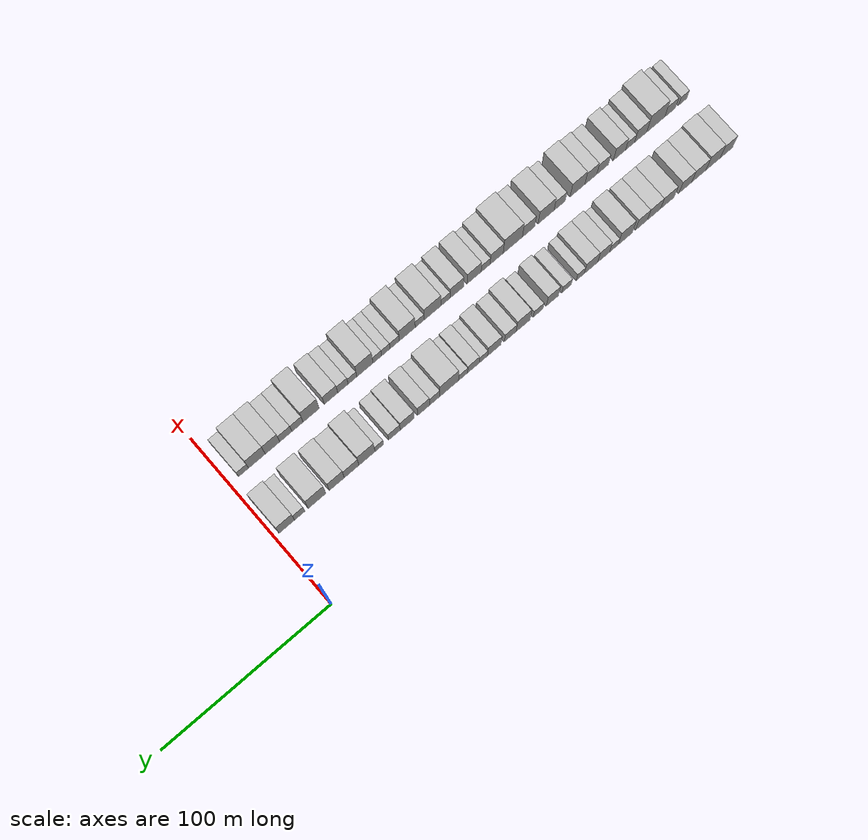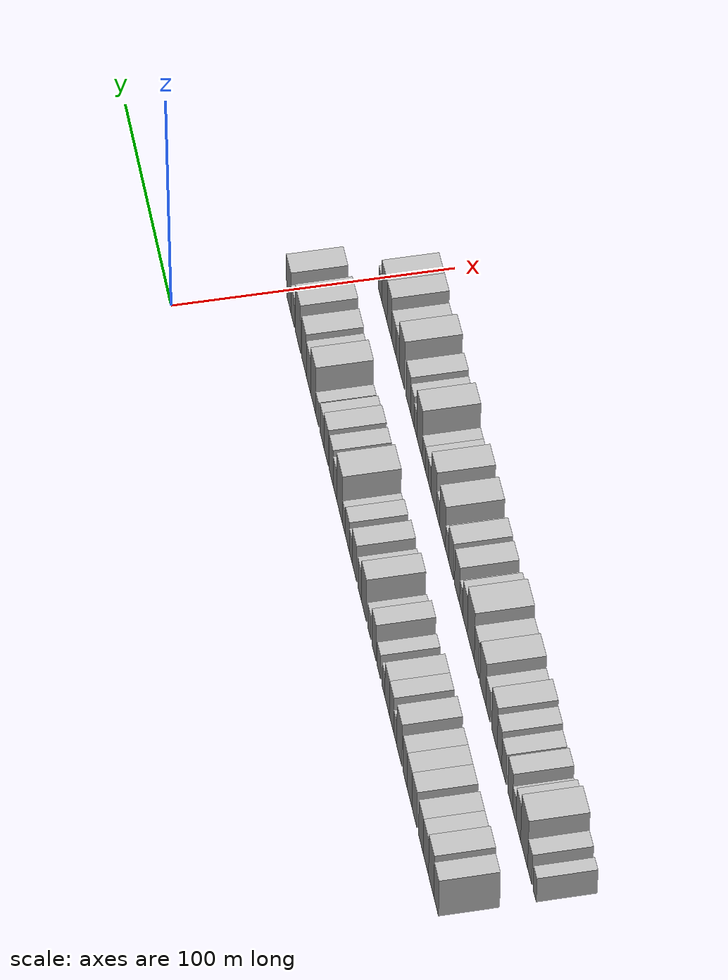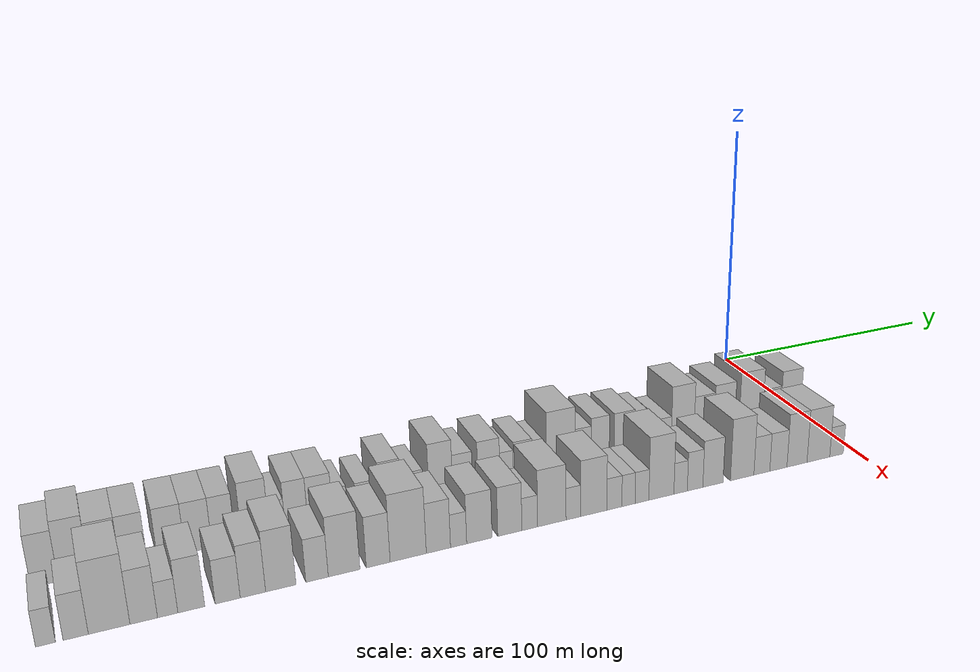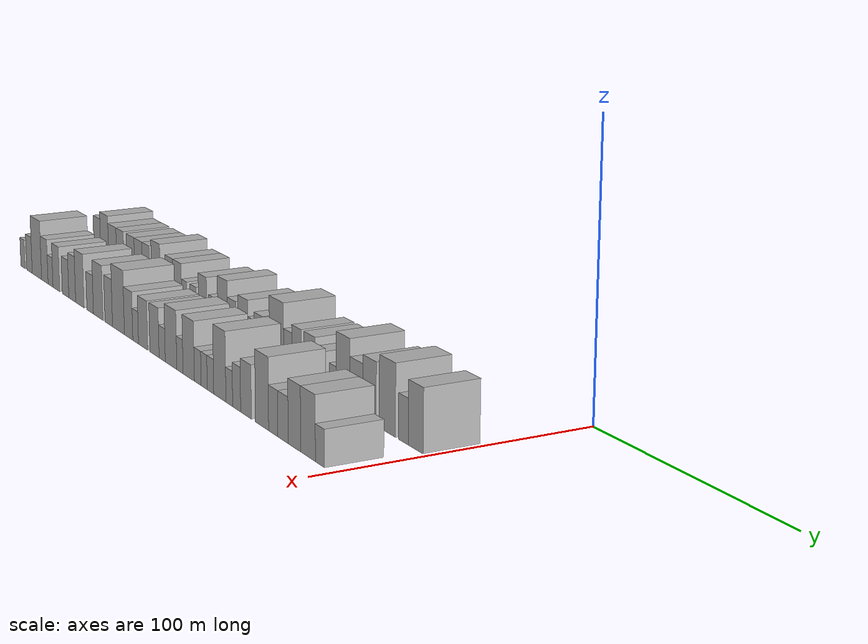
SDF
<sdf version="1.6">
 <world name="default">
  <model name="building_1">
   <static>1</static>
   <pose>50.0000 -277.0836 0 0.000000 0.000000 0.000000</pose>
   <link name="link">
    <pose>0 0 9.00 0 0 0</pose>
    <collision name="collision"><geometry><box><size>20.0000 7.8328 18.0000</size></box></geometry></collision>
    <visual name="visual">
     <cast_shadows>0</cast_shadows>
     <geometry><box><size>20.0000 7.8328 18.0000</size></box></geometry>
     <material>
      <script>
       <uri>model://HANNAS_wall/materials/scripts</uri>
       <uri>model://HANNAS_wall/materials/textures</uri>
       <name>vrc/HANNAS_wall</name>
      </script>
     </material>
    </visual>
   </link>
  </model>
  <model name="building_2">
   <static>1</static>
   <pose>50.0000 -268.6406 0 0.000000 0.000000 0.000000</pose>
   <link name="link">
    <pose>0 0 10.50 0 0 0</pose>
    <collision name="collision"><geometry><box><size>20.0000 9.0533 21.0000</size></box></geometry></collision>
    <visual name="visual">
     <cast_shadows>0</cast_shadows>
     <geometry><box><size>20.0000 9.0533 21.0000</size></box></geometry>
     <material>
      <script>
       <uri>model://HANNAS_wall/materials/scripts</uri>
       <uri>model://HANNAS_wall/materials/textures</uri>
       <name>vrc/HANNAS_wall</name>
      </script>
     </material>
    </visual>
   </link>
  </model>
  <model name="building_3">
   <static>1</static>
   <pose>50.0000 -259.6193 0 0.000000 0.000000 0.000000</pose>
   <link name="link">
    <pose>0 0 9.00 0 0 0</pose>
    <collision name="collision"><geometry><box><size>20.0000 8.9893 18.0000</size></box></geometry></collision>
    <visual name="visual">
     <cast_shadows>0</cast_shadows>
     <geometry><box><size>20.0000 8.9893 18.0000</size></box></geometry>
     <material>
      <script>
       <uri>model://HANNAS_wall/materials/scripts</uri>
       <uri>model://HANNAS_wall/materials/textures</uri>
       <name>vrc/HANNAS_wall</name>
      </script>
     </material>
    </visual>
   </link>
  </model>
  <model name="building_4">
   <static>1</static>
   <pose>50.0000 -251.0663 0 0.000000 0.000000 0.000000</pose>
   <link name="link">
    <pose>0 0 9.00 0 0 0</pose>
    <collision name="collision"><geometry><box><size>20.0000 8.1167 18.0000</size></box></geometry></collision>
    <visual name="visual">
     <cast_shadows>0</cast_shadows>
     <geometry><box><size>20.0000 8.1167 18.0000</size></box></geometry>
     <material>
      <script>
       <uri>model://HANNAS_wall/materials/scripts</uri>
       <uri>model://HANNAS_wall/materials/textures</uri>
       <name>vrc/HANNAS_wall</name>
      </script>
     </material>
    </visual>
   </link>
  </model>
  <model name="building_5">
   <static>1</static>
   <pose>50.0000 -239.7565 0 0.000000 0.000000 0.000000</pose>
   <link name="link">
    <pose>0 0 9.00 0 0 0</pose>
    <collision name="collision"><geometry><box><size>20.0000 8.5028 18.0000</size></box></geometry></collision>
    <visual name="visual">
     <cast_shadows>0</cast_shadows>
     <geometry><box><size>20.0000 8.5028 18.0000</size></box></geometry>
     <material>
      <script>
       <uri>model://HANNAS_wall/materials/scripts</uri>
       <uri>model://HANNAS_wall/materials/textures</uri>
       <name>vrc/HANNAS_wall</name>
      </script>
     </material>
    </visual>
   </link>
  </model>
  <model name="building_6">
   <static>1</static>
   <pose>50.0000 -231.3192 0 0.000000 0.000000 0.000000</pose>
   <link name="link">
    <pose>0 0 9.00 0 0 0</pose>
    <collision name="collision"><geometry><box><size>20.0000 8.3718 18.0000</size></box></geometry></collision>
    <visual name="visual">
     <cast_shadows>0</cast_shadows>
     <geometry><box><size>20.0000 8.3718 18.0000</size></box></geometry>
     <material>
      <script>
       <uri>model://HANNAS_wall/materials/scripts</uri>
       <uri>model://HANNAS_wall/materials/textures</uri>
       <name>vrc/HANNAS_wall</name>
      </script>
     </material>
    </visual>
   </link>
  </model>
  <model name="building_7">
   <static>1</static>
   <pose>50.0000 -223.4350 0 0.000000 0.000000 0.000000</pose>
   <link name="link">
    <pose>0 0 9.00 0 0 0</pose>
    <collision name="collision"><geometry><box><size>20.0000 7.3966 18.0000</size></box></geometry></collision>
    <visual name="visual">
     <cast_shadows>0</cast_shadows>
     <geometry><box><size>20.0000 7.3966 18.0000</size></box></geometry>
     <material>
      <script>
       <uri>model://HANNAS_wall/materials/scripts</uri>
       <uri>model://HANNAS_wall/materials/textures</uri>
       <name>vrc/HANNAS_wall</name>
      </script>
     </material>
    </visual>
   </link>
  </model>
  <model name="building_8">
   <static>1</static>
   <pose>50.0000 -213.2876 0 0.000000 0.000000 0.000000</pose>
   <link name="link">
    <pose>0 0 10.50 0 0 0</pose>
    <collision name="collision"><geometry><box><size>20.0000 8.8982 21.0000</size></box></geometry></collision>
    <visual name="visual">
     <cast_shadows>0</cast_shadows>
     <geometry><box><size>20.0000 8.8982 21.0000</size></box></geometry>
     <material>
      <script>
       <uri>model://HANNAS_wall/materials/scripts</uri>
       <uri>model://HANNAS_wall/materials/textures</uri>
       <name>vrc/HANNAS_wall</name>
      </script>
     </material>
    </visual>
   </link>
  </model>
  <model name="building_9">
   <static>1</static>
   <pose>50.0000 -206.2193 0 0.000000 0.000000 0.000000</pose>
   <link name="link">
    <pose>0 0 6.00 0 0 0</pose>
    <collision name="collision"><geometry><box><size>20.0000 5.2385 12.0000</size></box></geometry></collision>
    <visual name="visual">
     <cast_shadows>0</cast_shadows>
     <geometry><box><size>20.0000 5.2385 12.0000</size></box></geometry>
     <material>
      <script>
       <uri>model://HANNAS_wall/materials/scripts</uri>
       <uri>model://HANNAS_wall/materials/textures</uri>
       <name>vrc/HANNAS_wall</name>
      </script>
     </material>
    </visual>
   </link>
  </model>
  <model name="building_10">
   <static>1</static>
   <pose>50.0000 -199.8635 0 0.000000 0.000000 0.000000</pose>
   <link name="link">
    <pose>0 0 9.00 0 0 0</pose>
    <collision name="collision"><geometry><box><size>20.0000 7.4730 18.0000</size></box></geometry></collision>
    <visual name="visual">
     <cast_shadows>0</cast_shadows>
     <geometry><box><size>20.0000 7.4730 18.0000</size></box></geometry>
     <material>
      <script>
       <uri>model://HANNAS_wall/materials/scripts</uri>
       <uri>model://HANNAS_wall/materials/textures</uri>
       <name>vrc/HANNAS_wall</name>
      </script>
     </material>
    </visual>
   </link>
  </model>
  <model name="building_11">
   <static>1</static>
   <pose>50.0000 -191.9743 0 0.000000 0.000000 0.000000</pose>
   <link name="link">
    <pose>0 0 9.00 0 0 0</pose>
    <collision name="collision"><geometry><box><size>20.0000 8.3054 18.0000</size></box></geometry></collision>
    <visual name="visual">
     <cast_shadows>0</cast_shadows>
     <geometry><box><size>20.0000 8.3054 18.0000</size></box></geometry>
     <material>
      <script>
       <uri>model://HANNAS_wall/materials/scripts</uri>
       <uri>model://HANNAS_wall/materials/textures</uri>
       <name>vrc/HANNAS_wall</name>
      </script>
     </material>
    </visual>
   </link>
  </model>
  <model name="building_12">
   <static>1</static>
   <pose>50.0000 -185.3072 0 0.000000 0.000000 0.000000</pose>
   <link name="link">
    <pose>0 0 6.00 0 0 0</pose>
    <collision name="collision"><geometry><box><size>20.0000 5.0287 12.0000</size></box></geometry></collision>
    <visual name="visual">
     <cast_shadows>0</cast_shadows>
     <geometry><box><size>20.0000 5.0287 12.0000</size></box></geometry>
     <material>
      <script>
       <uri>model://HANNAS_wall/materials/scripts</uri>
       <uri>model://HANNAS_wall/materials/textures</uri>
       <name>vrc/HANNAS_wall</name>
      </script>
     </material>
    </visual>
   </link>
  </model>
  <model name="building_13">
   <static>1</static>
   <pose>50.0000 -176.8049 0 0.000000 0.000000 0.000000</pose>
   <link name="link">
    <pose>0 0 6.00 0 0 0</pose>
    <collision name="collision"><geometry><box><size>20.0000 5.9760 12.0000</size></box></geometry></collision>
    <visual name="visual">
     <cast_shadows>0</cast_shadows>
     <geometry><box><size>20.0000 5.9760 12.0000</size></box></geometry>
     <material>
      <script>
       <uri>model://HANNAS_wall/materials/scripts</uri>
       <uri>model://HANNAS_wall/materials/textures</uri>
       <name>vrc/HANNAS_wall</name>
      </script>
     </material>
    </visual>
   </link>
  </model>
  <model name="building_14">
   <static>1</static>
   <pose>50.0000 -168.0518 0 0.000000 0.000000 0.000000</pose>
   <link name="link">
    <pose>0 0 9.00 0 0 0</pose>
    <collision name="collision"><geometry><box><size>20.0000 7.5302 18.0000</size></box></geometry></collision>
    <visual name="visual">
     <cast_shadows>0</cast_shadows>
     <geometry><box><size>20.0000 7.5302 18.0000</size></box></geometry>
     <material>
      <script>
       <uri>model://HANNAS_wall/materials/scripts</uri>
       <uri>model://HANNAS_wall/materials/textures</uri>
       <name>vrc/HANNAS_wall</name>
      </script>
     </material>
    </visual>
   </link>
  </model>
  <model name="building_15">
   <static>1</static>
   <pose>50.0000 -159.2871 0 0.000000 0.000000 0.000000</pose>
   <link name="link">
    <pose>0 0 6.00 0 0 0</pose>
    <collision name="collision"><geometry><box><size>20.0000 5.9992 12.0000</size></box></geometry></collision>
    <visual name="visual">
     <cast_shadows>0</cast_shadows>
     <geometry><box><size>20.0000 5.9992 12.0000</size></box></geometry>
     <material>
      <script>
       <uri>model://HANNAS_wall/materials/scripts</uri>
       <uri>model://HANNAS_wall/materials/textures</uri>
       <name>vrc/HANNAS_wall</name>
      </script>
     </material>
    </visual>
   </link>
  </model>
  <model name="building_16">
   <static>1</static>
   <pose>50.0000 -150.0109 0 0.000000 0.000000 0.000000</pose>
   <link name="link">
    <pose>0 0 10.50 0 0 0</pose>
    <collision name="collision"><geometry><box><size>20.0000 8.5532 21.0000</size></box></geometry></collision>
    <visual name="visual">
     <cast_shadows>0</cast_shadows>
     <geometry><box><size>20.0000 8.5532 21.0000</size></box></geometry>
     <material>
      <script>
       <uri>model://HANNAS_wall/materials/scripts</uri>
       <uri>model://HANNAS_wall/materials/textures</uri>
       <name>vrc/HANNAS_wall</name>
      </script>
     </material>
    </visual>
   </link>
  </model>
  <model name="building_17">
   <static>1</static>
   <pose>50.0000 -142.0953 0 0.000000 0.000000 0.000000</pose>
   <link name="link">
    <pose>0 0 7.50 0 0 0</pose>
    <collision name="collision"><geometry><box><size>20.0000 7.2780 15.0000</size></box></geometry></collision>
    <visual name="visual">
     <cast_shadows>0</cast_shadows>
     <geometry><box><size>20.0000 7.2780 15.0000</size></box></geometry>
     <material>
      <script>
       <uri>model://HANNAS_wall/materials/scripts</uri>
       <uri>model://HANNAS_wall/materials/textures</uri>
       <name>vrc/HANNAS_wall</name>
      </script>
     </material>
    </visual>
   </link>
  </model>
  <model name="building_18">
   <static>1</static>
   <pose>50.0000 -132.3448 0 0.000000 0.000000 0.000000</pose>
   <link name="link">
    <pose>0 0 9.00 0 0 0</pose>
    <collision name="collision"><geometry><box><size>20.0000 8.2228 18.0000</size></box></geometry></collision>
    <visual name="visual">
     <cast_shadows>0</cast_shadows>
     <geometry><box><size>20.0000 8.2228 18.0000</size></box></geometry>
     <material>
      <script>
       <uri>model://HANNAS_wall/materials/scripts</uri>
       <uri>model://HANNAS_wall/materials/textures</uri>
       <name>vrc/HANNAS_wall</name>
      </script>
     </material>
    </visual>
   </link>
  </model>
  <model name="building_19">
   <static>1</static>
   <pose>50.0000 -125.6786 0 0.000000 0.000000 0.000000</pose>
   <link name="link">
    <pose>0 0 6.00 0 0 0</pose>
    <collision name="collision"><geometry><box><size>20.0000 5.1096 12.0000</size></box></geometry></collision>
    <visual name="visual">
     <cast_shadows>0</cast_shadows>
     <geometry><box><size>20.0000 5.1096 12.0000</size></box></geometry>
     <material>
      <script>
       <uri>model://HANNAS_wall/materials/scripts</uri>
       <uri>model://HANNAS_wall/materials/textures</uri>
       <name>vrc/HANNAS_wall</name>
      </script>
     </material>
    </visual>
   </link>
  </model>
  <model name="building_20">
   <static>1</static>
   <pose>50.0000 -119.5632 0 0.000000 0.000000 0.000000</pose>
   <link name="link">
    <pose>0 0 7.50 0 0 0</pose>
    <collision name="collision"><geometry><box><size>20.0000 7.1214 15.0000</size></box></geometry></collision>
    <visual name="visual">
     <cast_shadows>0</cast_shadows>
     <geometry><box><size>20.0000 7.1214 15.0000</size></box></geometry>
     <material>
      <script>
       <uri>model://HANNAS_wall/materials/scripts</uri>
       <uri>model://HANNAS_wall/materials/textures</uri>
       <name>vrc/HANNAS_wall</name>
      </script>
     </material>
    </visual>
   </link>
  </model>
  <model name="building_21">
   <static>1</static>
   <pose>50.0000 -113.2214 0 0.000000 0.000000 0.000000</pose>
   <link name="link">
    <pose>0 0 6.00 0 0 0</pose>
    <collision name="collision"><geometry><box><size>20.0000 5.5622 12.0000</size></box></geometry></collision>
    <visual name="visual">
     <cast_shadows>0</cast_shadows>
     <geometry><box><size>20.0000 5.5622 12.0000</size></box></geometry>
     <material>
      <script>
       <uri>model://HANNAS_wall/materials/scripts</uri>
       <uri>model://HANNAS_wall/materials/textures</uri>
       <name>vrc/HANNAS_wall</name>
      </script>
     </material>
    </visual>
   </link>
  </model>
  <model name="building_22">
   <static>1</static>
   <pose>50.0000 -104.7988 0 0.000000 0.000000 0.000000</pose>
   <link name="link">
    <pose>0 0 12.00 0 0 0</pose>
    <collision name="collision"><geometry><box><size>20.0000 11.2829 24.0000</size></box></geometry></collision>
    <visual name="visual">
     <cast_shadows>0</cast_shadows>
     <geometry><box><size>20.0000 11.2829 24.0000</size></box></geometry>
     <material>
      <script>
       <uri>model://HANNAS_wall/materials/scripts</uri>
       <uri>model://HANNAS_wall/materials/textures</uri>
       <name>vrc/HANNAS_wall</name>
      </script>
     </material>
    </visual>
   </link>
  </model>
  <model name="building_23">
   <static>1</static>
   <pose>50.0000 -95.9924 0 0.000000 0.000000 0.000000</pose>
   <link name="link">
    <pose>0 0 7.50 0 0 0</pose>
    <collision name="collision"><geometry><box><size>20.0000 6.3301 15.0000</size></box></geometry></collision>
    <visual name="visual">
     <cast_shadows>0</cast_shadows>
     <geometry><box><size>20.0000 6.3301 15.0000</size></box></geometry>
     <material>
      <script>
       <uri>model://HANNAS_wall/materials/scripts</uri>
       <uri>model://HANNAS_wall/materials/textures</uri>
       <name>vrc/HANNAS_wall</name>
      </script>
     </material>
    </visual>
   </link>
  </model>
  <model name="building_24">
   <static>1</static>
   <pose>50.0000 -89.2120 0 0.000000 0.000000 0.000000</pose>
   <link name="link">
    <pose>0 0 9.00 0 0 0</pose>
    <collision name="collision"><geometry><box><size>20.0000 7.2307 18.0000</size></box></geometry></collision>
    <visual name="visual">
     <cast_shadows>0</cast_shadows>
     <geometry><box><size>20.0000 7.2307 18.0000</size></box></geometry>
     <material>
      <script>
       <uri>model://HANNAS_wall/materials/scripts</uri>
       <uri>model://HANNAS_wall/materials/textures</uri>
       <name>vrc/HANNAS_wall</name>
      </script>
     </material>
    </visual>
   </link>
  </model>
  <model name="building_25">
   <static>1</static>
   <pose>50.0000 -79.4001 0 0.000000 0.000000 0.000000</pose>
   <link name="link">
    <pose>0 0 9.00 0 0 0</pose>
    <collision name="collision"><geometry><box><size>20.0000 8.3930 18.0000</size></box></geometry></collision>
    <visual name="visual">
     <cast_shadows>0</cast_shadows>
     <geometry><box><size>20.0000 8.3930 18.0000</size></box></geometry>
     <material>
      <script>
       <uri>model://HANNAS_wall/materials/scripts</uri>
       <uri>model://HANNAS_wall/materials/textures</uri>
       <name>vrc/HANNAS_wall</name>
      </script>
     </material>
    </visual>
   </link>
  </model>
  <model name="building_26">
   <static>1</static>
   <pose>50.0000 -71.6414 0 0.000000 0.000000 0.000000</pose>
   <link name="link">
    <pose>0 0 7.50 0 0 0</pose>
    <collision name="collision"><geometry><box><size>20.0000 7.1246 15.0000</size></box></geometry></collision>
    <visual name="visual">
     <cast_shadows>0</cast_shadows>
     <geometry><box><size>20.0000 7.1246 15.0000</size></box></geometry>
     <material>
      <script>
       <uri>model://HANNAS_wall/materials/scripts</uri>
       <uri>model://HANNAS_wall/materials/textures</uri>
       <name>vrc/HANNAS_wall</name>
      </script>
     </material>
    </visual>
   </link>
  </model>
  <model name="building_27">
   <static>1</static>
   <pose>50.0000 -62.5019 0 0.000000 0.000000 0.000000</pose>
   <link name="link">
    <pose>0 0 6.00 0 0 0</pose>
    <collision name="collision"><geometry><box><size>20.0000 5.1543 12.0000</size></box></geometry></collision>
    <visual name="visual">
     <cast_shadows>0</cast_shadows>
     <geometry><box><size>20.0000 5.1543 12.0000</size></box></geometry>
     <material>
      <script>
       <uri>model://HANNAS_wall/materials/scripts</uri>
       <uri>model://HANNAS_wall/materials/textures</uri>
       <name>vrc/HANNAS_wall</name>
      </script>
     </material>
    </visual>
   </link>
  </model>
  <model name="building_28">
   <static>1</static>
   <pose>50.0000 -55.0729 0 0.000000 0.000000 0.000000</pose>
   <link name="link">
    <pose>0 0 12.00 0 0 0</pose>
    <collision name="collision"><geometry><box><size>20.0000 9.7038 24.0000</size></box></geometry></collision>
    <visual name="visual">
     <cast_shadows>0</cast_shadows>
     <geometry><box><size>20.0000 9.7038 24.0000</size></box></geometry>
     <material>
      <script>
       <uri>model://HANNAS_wall/materials/scripts</uri>
       <uri>model://HANNAS_wall/materials/textures</uri>
       <name>vrc/HANNAS_wall</name>
      </script>
     </material>
    </visual>
   </link>
  </model>
  <model name="building_29">
   <static>1</static>
   <pose>50.0000 -45.8381 0 0.000000 0.000000 0.000000</pose>
   <link name="link">
    <pose>0 0 9.00 0 0 0</pose>
    <collision name="collision"><geometry><box><size>20.0000 8.7659 18.0000</size></box></geometry></collision>
    <visual name="visual">
     <cast_shadows>0</cast_shadows>
     <geometry><box><size>20.0000 8.7659 18.0000</size></box></geometry>
     <material>
      <script>
       <uri>model://HANNAS_wall/materials/scripts</uri>
       <uri>model://HANNAS_wall/materials/textures</uri>
       <name>vrc/HANNAS_wall</name>
      </script>
     </material>
    </visual>
   </link>
  </model>
  <model name="building_30">
   <static>1</static>
   <pose>50.0000 -36.9854 0 0.000000 0.000000 0.000000</pose>
   <link name="link">
    <pose>0 0 10.50 0 0 0</pose>
    <collision name="collision"><geometry><box><size>20.0000 8.9395 21.0000</size></box></geometry></collision>
    <visual name="visual">
     <cast_shadows>0</cast_shadows>
     <geometry><box><size>20.0000 8.9395 21.0000</size></box></geometry>
     <material>
      <script>
       <uri>model://HANNAS_wall/materials/scripts</uri>
       <uri>model://HANNAS_wall/materials/textures</uri>
       <name>vrc/HANNAS_wall</name>
      </script>
     </material>
    </visual>
   </link>
  </model>
  <model name="building_31">
   <static>1</static>
   <pose>50.0000 -25.2559 0 0.000000 0.000000 0.000000</pose>
   <link name="link">
    <pose>0 0 12.00 0 0 0</pose>
    <collision name="collision"><geometry><box><size>20.0000 10.5196 24.0000</size></box></geometry></collision>
    <visual name="visual">
     <cast_shadows>0</cast_shadows>
     <geometry><box><size>20.0000 10.5196 24.0000</size></box></geometry>
     <material>
      <script>
       <uri>model://HANNAS_wall/materials/scripts</uri>
       <uri>model://HANNAS_wall/materials/textures</uri>
       <name>vrc/HANNAS_wall</name>
      </script>
     </material>
    </visual>
   </link>
  </model>
  <model name="building_32">
   <static>1</static>
   <pose>50.0000 -14.9282 0 0.000000 0.000000 0.000000</pose>
   <link name="link">
    <pose>0 0 7.50 0 0 0</pose>
    <collision name="collision"><geometry><box><size>20.0000 6.1357 15.0000</size></box></geometry></collision>
    <visual name="visual">
     <cast_shadows>0</cast_shadows>
     <geometry><box><size>20.0000 6.1357 15.0000</size></box></geometry>
     <material>
      <script>
       <uri>model://HANNAS_wall/materials/scripts</uri>
       <uri>model://HANNAS_wall/materials/textures</uri>
       <name>vrc/HANNAS_wall</name>
      </script>
     </material>
    </visual>
   </link>
  </model>
  <model name="building_33">
   <static>1</static>
   <pose>50.0000 -7.2381 0 0.000000 0.000000 0.000000</pose>
   <link name="link">
    <pose>0 0 10.50 0 0 0</pose>
    <collision name="collision"><geometry><box><size>20.0000 9.2446 21.0000</size></box></geometry></collision>
    <visual name="visual">
     <cast_shadows>0</cast_shadows>
     <geometry><box><size>20.0000 9.2446 21.0000</size></box></geometry>
     <material>
      <script>
       <uri>model://HANNAS_wall/materials/scripts</uri>
       <uri>model://HANNAS_wall/materials/textures</uri>
       <name>vrc/HANNAS_wall</name>
      </script>
     </material>
    </visual>
   </link>
  </model>
  <model name="building_67">
   <static>1</static>
   <pose>82.0000 -278.3570 0 0.000000 0.000000 0.000000</pose>
   <link name="link">
    <pose>0 0 6.00 0 0 0</pose>
    <collision name="collision"><geometry><box><size>20.0000 5.2861 12.0000</size></box></geometry></collision>
    <visual name="visual">
     <cast_shadows>0</cast_shadows>
     <geometry><box><size>20.0000 5.2861 12.0000</size></box></geometry>
     <material>
      <script>
       <uri>model://HANNAS_wall/materials/scripts</uri>
       <uri>model://HANNAS_wall/materials/textures</uri>
       <name>vrc/HANNAS_wall</name>
      </script>
     </material>
    </visual>
   </link>
  </model>
  <model name="building_68">
   <static>1</static>
   <pose>82.0000 -270.3275 0 0.000000 0.000000 0.000000</pose>
   <link name="link">
    <pose>0 0 7.50 0 0 0</pose>
    <collision name="collision"><geometry><box><size>20.0000 6.7728 15.0000</size></box></geometry></collision>
    <visual name="visual">
     <cast_shadows>0</cast_shadows>
     <geometry><box><size>20.0000 6.7728 15.0000</size></box></geometry>
     <material>
      <script>
       <uri>model://HANNAS_wall/materials/scripts</uri>
       <uri>model://HANNAS_wall/materials/textures</uri>
       <name>vrc/HANNAS_wall</name>
      </script>
     </material>
    </visual>
   </link>
  </model>
  <model name="building_69">
   <static>1</static>
   <pose>82.0000 -261.2630 0 0.000000 0.000000 0.000000</pose>
   <link name="link">
    <pose>0 0 12.00 0 0 0</pose>
    <collision name="collision"><geometry><box><size>20.0000 11.3561 24.0000</size></box></geometry></collision>
    <visual name="visual">
     <cast_shadows>0</cast_shadows>
     <geometry><box><size>20.0000 11.3561 24.0000</size></box></geometry>
     <material>
      <script>
       <uri>model://HANNAS_wall/materials/scripts</uri>
       <uri>model://HANNAS_wall/materials/textures</uri>
       <name>vrc/HANNAS_wall</name>
      </script>
     </material>
    </visual>
   </link>
  </model>
  <model name="building_70">
   <static>1</static>
   <pose>82.0000 -251.7454 0 0.000000 0.000000 0.000000</pose>
   <link name="link">
    <pose>0 0 9.00 0 0 0</pose>
    <collision name="collision"><geometry><box><size>20.0000 7.6792 18.0000</size></box></geometry></collision>
    <visual name="visual">
     <cast_shadows>0</cast_shadows>
     <geometry><box><size>20.0000 7.6792 18.0000</size></box></geometry>
     <material>
      <script>
       <uri>model://HANNAS_wall/materials/scripts</uri>
       <uri>model://HANNAS_wall/materials/textures</uri>
       <name>vrc/HANNAS_wall</name>
      </script>
     </material>
    </visual>
   </link>
  </model>
  <model name="building_71">
   <static>1</static>
   <pose>82.0000 -245.0376 0 0.000000 0.000000 0.000000</pose>
   <link name="link">
    <pose>0 0 6.00 0 0 0</pose>
    <collision name="collision"><geometry><box><size>20.0000 5.7363 12.0000</size></box></geometry></collision>
    <visual name="visual">
     <cast_shadows>0</cast_shadows>
     <geometry><box><size>20.0000 5.7363 12.0000</size></box></geometry>
     <material>
      <script>
       <uri>model://HANNAS_wall/materials/scripts</uri>
       <uri>model://HANNAS_wall/materials/textures</uri>
       <name>vrc/HANNAS_wall</name>
      </script>
     </material>
    </visual>
   </link>
  </model>
  <model name="building_72">
   <static>1</static>
   <pose>82.0000 -238.3021 0 0.000000 0.000000 0.000000</pose>
   <link name="link">
    <pose>0 0 9.00 0 0 0</pose>
    <collision name="collision"><geometry><box><size>20.0000 7.7348 18.0000</size></box></geometry></collision>
    <visual name="visual">
     <cast_shadows>0</cast_shadows>
     <geometry><box><size>20.0000 7.7348 18.0000</size></box></geometry>
     <material>
      <script>
       <uri>model://HANNAS_wall/materials/scripts</uri>
       <uri>model://HANNAS_wall/materials/textures</uri>
       <name>vrc/HANNAS_wall</name>
      </script>
     </material>
    </visual>
   </link>
  </model>
  <model name="building_73">
   <static>1</static>
   <pose>82.0000 -227.7676 0 0.000000 0.000000 0.000000</pose>
   <link name="link">
    <pose>0 0 7.50 0 0 0</pose>
    <collision name="collision"><geometry><box><size>20.0000 7.3343 15.0000</size></box></geometry></collision>
    <visual name="visual">
     <cast_shadows>0</cast_shadows>
     <geometry><box><size>20.0000 7.3343 15.0000</size></box></geometry>
     <material>
      <script>
       <uri>model://HANNAS_wall/materials/scripts</uri>
       <uri>model://HANNAS_wall/materials/textures</uri>
       <name>vrc/HANNAS_wall</name>
      </script>
     </material>
    </visual>
   </link>
  </model>
  <model name="building_74">
   <static>1</static>
   <pose>82.0000 -220.3121 0 0.000000 0.000000 0.000000</pose>
   <link name="link">
    <pose>0 0 9.00 0 0 0</pose>
    <collision name="collision"><geometry><box><size>20.0000 7.5766 18.0000</size></box></geometry></collision>
    <visual name="visual">
     <cast_shadows>0</cast_shadows>
     <geometry><box><size>20.0000 7.5766 18.0000</size></box></geometry>
     <material>
      <script>
       <uri>model://HANNAS_wall/materials/scripts</uri>
       <uri>model://HANNAS_wall/materials/textures</uri>
       <name>vrc/HANNAS_wall</name>
      </script>
     </material>
    </visual>
   </link>
  </model>
  <model name="building_75">
   <static>1</static>
   <pose>82.0000 -211.9257 0 0.000000 0.000000 0.000000</pose>
   <link name="link">
    <pose>0 0 10.50 0 0 0</pose>
    <collision name="collision"><geometry><box><size>20.0000 9.1963 21.0000</size></box></geometry></collision>
    <visual name="visual">
     <cast_shadows>0</cast_shadows>
     <geometry><box><size>20.0000 9.1963 21.0000</size></box></geometry>
     <material>
      <script>
       <uri>model://HANNAS_wall/materials/scripts</uri>
       <uri>model://HANNAS_wall/materials/textures</uri>
       <name>vrc/HANNAS_wall</name>
      </script>
     </material>
    </visual>
   </link>
  </model>
  <model name="building_76">
   <static>1</static>
   <pose>82.0000 -200.8414 0 0.000000 0.000000 0.000000</pose>
   <link name="link">
    <pose>0 0 7.50 0 0 0</pose>
    <collision name="collision"><geometry><box><size>20.0000 6.9722 15.0000</size></box></geometry></collision>
    <visual name="visual">
     <cast_shadows>0</cast_shadows>
     <geometry><box><size>20.0000 6.9722 15.0000</size></box></geometry>
     <material>
      <script>
       <uri>model://HANNAS_wall/materials/scripts</uri>
       <uri>model://HANNAS_wall/materials/textures</uri>
       <name>vrc/HANNAS_wall</name>
      </script>
     </material>
    </visual>
   </link>
  </model>
  <model name="building_77">
   <static>1</static>
   <pose>82.0000 -192.3628 0 0.000000 0.000000 0.000000</pose>
   <link name="link">
    <pose>0 0 10.50 0 0 0</pose>
    <collision name="collision"><geometry><box><size>20.0000 9.9850 21.0000</size></box></geometry></collision>
    <visual name="visual">
     <cast_shadows>0</cast_shadows>
     <geometry><box><size>20.0000 9.9850 21.0000</size></box></geometry>
     <material>
      <script>
       <uri>model://HANNAS_wall/materials/scripts</uri>
       <uri>model://HANNAS_wall/materials/textures</uri>
       <name>vrc/HANNAS_wall</name>
      </script>
     </material>
    </visual>
   </link>
  </model>
  <model name="building_78">
   <static>1</static>
   <pose>82.0000 -181.5236 0 0.000000 0.000000 0.000000</pose>
   <link name="link">
    <pose>0 0 9.00 0 0 0</pose>
    <collision name="collision"><geometry><box><size>20.0000 7.6935 18.0000</size></box></geometry></collision>
    <visual name="visual">
     <cast_shadows>0</cast_shadows>
     <geometry><box><size>20.0000 7.6935 18.0000</size></box></geometry>
     <material>
      <script>
       <uri>model://HANNAS_wall/materials/scripts</uri>
       <uri>model://HANNAS_wall/materials/textures</uri>
       <name>vrc/HANNAS_wall</name>
      </script>
     </material>
    </visual>
   </link>
  </model>
  <model name="building_79">
   <static>1</static>
   <pose>82.0000 -171.7338 0 0.000000 0.000000 0.000000</pose>
   <link name="link">
    <pose>0 0 12.00 0 0 0</pose>
    <collision name="collision"><geometry><box><size>20.0000 11.8861 24.0000</size></box></geometry></collision>
    <visual name="visual">
     <cast_shadows>0</cast_shadows>
     <geometry><box><size>20.0000 11.8861 24.0000</size></box></geometry>
     <material>
      <script>
       <uri>model://HANNAS_wall/materials/scripts</uri>
       <uri>model://HANNAS_wall/materials/textures</uri>
       <name>vrc/HANNAS_wall</name>
      </script>
     </material>
    </visual>
   </link>
  </model>
  <model name="building_80">
   <static>1</static>
   <pose>82.0000 -161.7364 0 0.000000 0.000000 0.000000</pose>
   <link name="link">
    <pose>0 0 9.00 0 0 0</pose>
    <collision name="collision"><geometry><box><size>20.0000 8.1086 18.0000</size></box></geometry></collision>
    <visual name="visual">
     <cast_shadows>0</cast_shadows>
     <geometry><box><size>20.0000 8.1086 18.0000</size></box></geometry>
     <material>
      <script>
       <uri>model://HANNAS_wall/materials/scripts</uri>
       <uri>model://HANNAS_wall/materials/textures</uri>
       <name>vrc/HANNAS_wall</name>
      </script>
     </material>
    </visual>
   </link>
  </model>
  <model name="building_81">
   <static>1</static>
   <pose>82.0000 -154.9398 0 0.000000 0.000000 0.000000</pose>
   <link name="link">
    <pose>0 0 6.00 0 0 0</pose>
    <collision name="collision"><geometry><box><size>20.0000 5.4846 12.0000</size></box></geometry></collision>
    <visual name="visual">
     <cast_shadows>0</cast_shadows>
     <geometry><box><size>20.0000 5.4846 12.0000</size></box></geometry>
     <material>
      <script>
       <uri>model://HANNAS_wall/materials/scripts</uri>
       <uri>model://HANNAS_wall/materials/textures</uri>
       <name>vrc/HANNAS_wall</name>
      </script>
     </material>
    </visual>
   </link>
  </model>
  <model name="building_82">
   <static>1</static>
   <pose>82.0000 -147.8364 0 0.000000 0.000000 0.000000</pose>
   <link name="link">
    <pose>0 0 9.00 0 0 0</pose>
    <collision name="collision"><geometry><box><size>20.0000 8.7222 18.0000</size></box></geometry></collision>
    <visual name="visual">
     <cast_shadows>0</cast_shadows>
     <geometry><box><size>20.0000 8.7222 18.0000</size></box></geometry>
     <material>
      <script>
       <uri>model://HANNAS_wall/materials/scripts</uri>
       <uri>model://HANNAS_wall/materials/textures</uri>
       <name>vrc/HANNAS_wall</name>
      </script>
     </material>
    </visual>
   </link>
  </model>
  <model name="building_83">
   <static>1</static>
   <pose>82.0000 -137.2420 0 0.000000 0.000000 0.000000</pose>
   <link name="link">
    <pose>0 0 9.00 0 0 0</pose>
    <collision name="collision"><geometry><box><size>20.0000 8.4667 18.0000</size></box></geometry></collision>
    <visual name="visual">
     <cast_shadows>0</cast_shadows>
     <geometry><box><size>20.0000 8.4667 18.0000</size></box></geometry>
     <material>
      <script>
       <uri>model://HANNAS_wall/materials/scripts</uri>
       <uri>model://HANNAS_wall/materials/textures</uri>
       <name>vrc/HANNAS_wall</name>
      </script>
     </material>
    </visual>
   </link>
  </model>
  <model name="building_84">
   <static>1</static>
   <pose>82.0000 -130.2176 0 0.000000 0.000000 0.000000</pose>
   <link name="link">
    <pose>0 0 6.00 0 0 0</pose>
    <collision name="collision"><geometry><box><size>20.0000 5.5822 12.0000</size></box></geometry></collision>
    <visual name="visual">
     <cast_shadows>0</cast_shadows>
     <geometry><box><size>20.0000 5.5822 12.0000</size></box></geometry>
     <material>
      <script>
       <uri>model://HANNAS_wall/materials/scripts</uri>
       <uri>model://HANNAS_wall/materials/textures</uri>
       <name>vrc/HANNAS_wall</name>
      </script>
     </material>
    </visual>
   </link>
  </model>
  <model name="building_85">
   <static>1</static>
   <pose>82.0000 -122.2808 0 0.000000 0.000000 0.000000</pose>
   <link name="link">
    <pose>0 0 10.50 0 0 0</pose>
    <collision name="collision"><geometry><box><size>20.0000 10.2914 21.0000</size></box></geometry></collision>
    <visual name="visual">
     <cast_shadows>0</cast_shadows>
     <geometry><box><size>20.0000 10.2914 21.0000</size></box></geometry>
     <material>
      <script>
       <uri>model://HANNAS_wall/materials/scripts</uri>
       <uri>model://HANNAS_wall/materials/textures</uri>
       <name>vrc/HANNAS_wall</name>
      </script>
     </material>
    </visual>
   </link>
  </model>
  <model name="building_86">
   <static>1</static>
   <pose>82.0000 -114.4395 0 0.000000 0.000000 0.000000</pose>
   <link name="link">
    <pose>0 0 6.00 0 0 0</pose>
    <collision name="collision"><geometry><box><size>20.0000 5.3910 12.0000</size></box></geometry></collision>
    <visual name="visual">
     <cast_shadows>0</cast_shadows>
     <geometry><box><size>20.0000 5.3910 12.0000</size></box></geometry>
     <material>
      <script>
       <uri>model://HANNAS_wall/materials/scripts</uri>
       <uri>model://HANNAS_wall/materials/textures</uri>
       <name>vrc/HANNAS_wall</name>
      </script>
     </material>
    </visual>
   </link>
  </model>
  <model name="building_87">
   <static>1</static>
   <pose>82.0000 -106.8966 0 0.000000 0.000000 0.000000</pose>
   <link name="link">
    <pose>0 0 10.50 0 0 0</pose>
    <collision name="collision"><geometry><box><size>20.0000 9.6948 21.0000</size></box></geometry></collision>
    <visual name="visual">
     <cast_shadows>0</cast_shadows>
     <geometry><box><size>20.0000 9.6948 21.0000</size></box></geometry>
     <material>
      <script>
       <uri>model://HANNAS_wall/materials/scripts</uri>
       <uri>model://HANNAS_wall/materials/textures</uri>
       <name>vrc/HANNAS_wall</name>
      </script>
     </material>
    </visual>
   </link>
  </model>
  <model name="building_88">
   <static>1</static>
   <pose>82.0000 -99.2154 0 0.000000 0.000000 0.000000</pose>
   <link name="link">
    <pose>0 0 6.00 0 0 0</pose>
    <collision name="collision"><geometry><box><size>20.0000 5.6678 12.0000</size></box></geometry></collision>
    <visual name="visual">
     <cast_shadows>0</cast_shadows>
     <geometry><box><size>20.0000 5.6678 12.0000</size></box></geometry>
     <material>
      <script>
       <uri>model://HANNAS_wall/materials/scripts</uri>
       <uri>model://HANNAS_wall/materials/textures</uri>
       <name>vrc/HANNAS_wall</name>
      </script>
     </material>
    </visual>
   </link>
  </model>
  <model name="building_89">
   <static>1</static>
   <pose>82.0000 -93.8608 0 0.000000 0.000000 0.000000</pose>
   <link name="link">
    <pose>0 0 6.00 0 0 0</pose>
    <collision name="collision"><geometry><box><size>20.0000 5.0414 12.0000</size></box></geometry></collision>
    <visual name="visual">
     <cast_shadows>0</cast_shadows>
     <geometry><box><size>20.0000 5.0414 12.0000</size></box></geometry>
     <material>
      <script>
       <uri>model://HANNAS_wall/materials/scripts</uri>
       <uri>model://HANNAS_wall/materials/textures</uri>
       <name>vrc/HANNAS_wall</name>
      </script>
     </material>
    </visual>
   </link>
  </model>
  <model name="building_90">
   <static>1</static>
   <pose>82.0000 -88.6980 0 0.000000 0.000000 0.000000</pose>
   <link name="link">
    <pose>0 0 6.00 0 0 0</pose>
    <collision name="collision"><geometry><box><size>20.0000 5.2843 12.0000</size></box></geometry></collision>
    <visual name="visual">
     <cast_shadows>0</cast_shadows>
     <geometry><box><size>20.0000 5.2843 12.0000</size></box></geometry>
     <material>
      <script>
       <uri>model://HANNAS_wall/materials/scripts</uri>
       <uri>model://HANNAS_wall/materials/textures</uri>
       <name>vrc/HANNAS_wall</name>
      </script>
     </material>
    </visual>
   </link>
  </model>
  <model name="building_91">
   <static>1</static>
   <pose>82.0000 -81.1677 0 0.000000 0.000000 0.000000</pose>
   <link name="link">
    <pose>0 0 12.00 0 0 0</pose>
    <collision name="collision"><geometry><box><size>20.0000 9.7761 24.0000</size></box></geometry></collision>
    <visual name="visual">
     <cast_shadows>0</cast_shadows>
     <geometry><box><size>20.0000 9.7761 24.0000</size></box></geometry>
     <material>
      <script>
       <uri>model://HANNAS_wall/materials/scripts</uri>
       <uri>model://HANNAS_wall/materials/textures</uri>
       <name>vrc/HANNAS_wall</name>
      </script>
     </material>
    </visual>
   </link>
  </model>
  <model name="building_92">
   <static>1</static>
   <pose>82.0000 -73.6408 0 0.000000 0.000000 0.000000</pose>
   <link name="link">
    <pose>0 0 6.00 0 0 0</pose>
    <collision name="collision"><geometry><box><size>20.0000 5.2778 12.0000</size></box></geometry></collision>
    <visual name="visual">
     <cast_shadows>0</cast_shadows>
     <geometry><box><size>20.0000 5.2778 12.0000</size></box></geometry>
     <material>
      <script>
       <uri>model://HANNAS_wall/materials/scripts</uri>
       <uri>model://HANNAS_wall/materials/textures</uri>
       <name>vrc/HANNAS_wall</name>
      </script>
     </material>
    </visual>
   </link>
  </model>
  <model name="building_93">
   <static>1</static>
   <pose>82.0000 -67.8905 0 0.000000 0.000000 0.000000</pose>
   <link name="link">
    <pose>0 0 7.50 0 0 0</pose>
    <collision name="collision"><geometry><box><size>20.0000 6.2228 15.0000</size></box></geometry></collision>
    <visual name="visual">
     <cast_shadows>0</cast_shadows>
     <geometry><box><size>20.0000 6.2228 15.0000</size></box></geometry>
     <material>
      <script>
       <uri>model://HANNAS_wall/materials/scripts</uri>
       <uri>model://HANNAS_wall/materials/textures</uri>
       <name>vrc/HANNAS_wall</name>
      </script>
     </material>
    </visual>
   </link>
  </model>
  <model name="building_94">
   <static>1</static>
   <pose>82.0000 -60.6868 0 0.000000 0.000000 0.000000</pose>
   <link name="link">
    <pose>0 0 9.00 0 0 0</pose>
    <collision name="collision"><geometry><box><size>20.0000 8.1846 18.0000</size></box></geometry></collision>
    <visual name="visual">
     <cast_shadows>0</cast_shadows>
     <geometry><box><size>20.0000 8.1846 18.0000</size></box></geometry>
     <material>
      <script>
       <uri>model://HANNAS_wall/materials/scripts</uri>
       <uri>model://HANNAS_wall/materials/textures</uri>
       <name>vrc/HANNAS_wall</name>
      </script>
     </material>
    </visual>
   </link>
  </model>
  <model name="building_95">
   <static>1</static>
   <pose>82.0000 -48.7388 0 0.000000 0.000000 0.000000</pose>
   <link name="link">
    <pose>0 0 12.00 0 0 0</pose>
    <collision name="collision"><geometry><box><size>20.0000 9.7113 24.0000</size></box></geometry></collision>
    <visual name="visual">
     <cast_shadows>0</cast_shadows>
     <geometry><box><size>20.0000 9.7113 24.0000</size></box></geometry>
     <material>
      <script>
       <uri>model://HANNAS_wall/materials/scripts</uri>
       <uri>model://HANNAS_wall/materials/textures</uri>
       <name>vrc/HANNAS_wall</name>
      </script>
     </material>
    </visual>
   </link>
  </model>
  <model name="building_96">
   <static>1</static>
   <pose>82.0000 -40.5540 0 0.000000 0.000000 0.000000</pose>
   <link name="link">
    <pose>0 0 7.50 0 0 0</pose>
    <collision name="collision"><geometry><box><size>20.0000 6.6585 15.0000</size></box></geometry></collision>
    <visual name="visual">
     <cast_shadows>0</cast_shadows>
     <geometry><box><size>20.0000 6.6585 15.0000</size></box></geometry>
     <material>
      <script>
       <uri>model://HANNAS_wall/materials/scripts</uri>
       <uri>model://HANNAS_wall/materials/textures</uri>
       <name>vrc/HANNAS_wall</name>
      </script>
     </material>
    </visual>
   </link>
  </model>
  <model name="building_97">
   <static>1</static>
   <pose>82.0000 -33.5784 0 0.000000 0.000000 0.000000</pose>
   <link name="link">
    <pose>0 0 7.50 0 0 0</pose>
    <collision name="collision"><geometry><box><size>20.0000 7.2926 15.0000</size></box></geometry></collision>
    <visual name="visual">
     <cast_shadows>0</cast_shadows>
     <geometry><box><size>20.0000 7.2926 15.0000</size></box></geometry>
     <material>
      <script>
       <uri>model://HANNAS_wall/materials/scripts</uri>
       <uri>model://HANNAS_wall/materials/textures</uri>
       <name>vrc/HANNAS_wall</name>
      </script>
     </material>
    </visual>
   </link>
  </model>
  <model name="building_98">
   <static>1</static>
   <pose>82.0000 -25.6197 0 0.000000 0.000000 0.000000</pose>
   <link name="link">
    <pose>0 0 10.50 0 0 0</pose>
    <collision name="collision"><geometry><box><size>20.0000 8.6247 21.0000</size></box></geometry></collision>
    <visual name="visual">
     <cast_shadows>0</cast_shadows>
     <geometry><box><size>20.0000 8.6247 21.0000</size></box></geometry>
     <material>
      <script>
       <uri>model://HANNAS_wall/materials/scripts</uri>
       <uri>model://HANNAS_wall/materials/textures</uri>
       <name>vrc/HANNAS_wall</name>
      </script>
     </material>
    </visual>
   </link>
  </model>
  <model name="building_99">
   <static>1</static>
   <pose>82.0000 -16.3375 0 0.000000 0.000000 0.000000</pose>
   <link name="link">
    <pose>0 0 10.50 0 0 0</pose>
    <collision name="collision"><geometry><box><size>20.0000 9.9398 21.0000</size></box></geometry></collision>
    <visual name="visual">
     <cast_shadows>0</cast_shadows>
     <geometry><box><size>20.0000 9.9398 21.0000</size></box></geometry>
     <material>
      <script>
       <uri>model://HANNAS_wall/materials/scripts</uri>
       <uri>model://HANNAS_wall/materials/textures</uri>
       <name>vrc/HANNAS_wall</name>
      </script>
     </material>
    </visual>
   </link>
  </model>
  <model name="building_100">
   <static>1</static>
   <pose>82.0000 -8.3751 0 0.000000 0.000000 0.000000</pose>
   <link name="link">
    <pose>0 0 6.00 0 0 0</pose>
    <collision name="collision"><geometry><box><size>20.0000 5.9850 12.0000</size></box></geometry></collision>
    <visual name="visual">
     <cast_shadows>0</cast_shadows>
     <geometry><box><size>20.0000 5.9850 12.0000</size></box></geometry>
     <material>
      <script>
       <uri>model://HANNAS_wall/materials/scripts</uri>
       <uri>model://HANNAS_wall/materials/textures</uri>
       <name>vrc/HANNAS_wall</name>
      </script>
     </material>
    </visual>
   </link>
  </model>
 </world>
</sdf>
